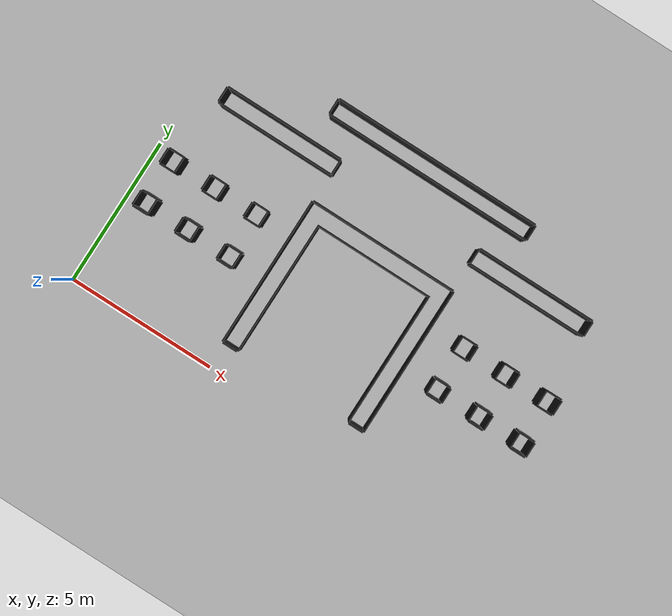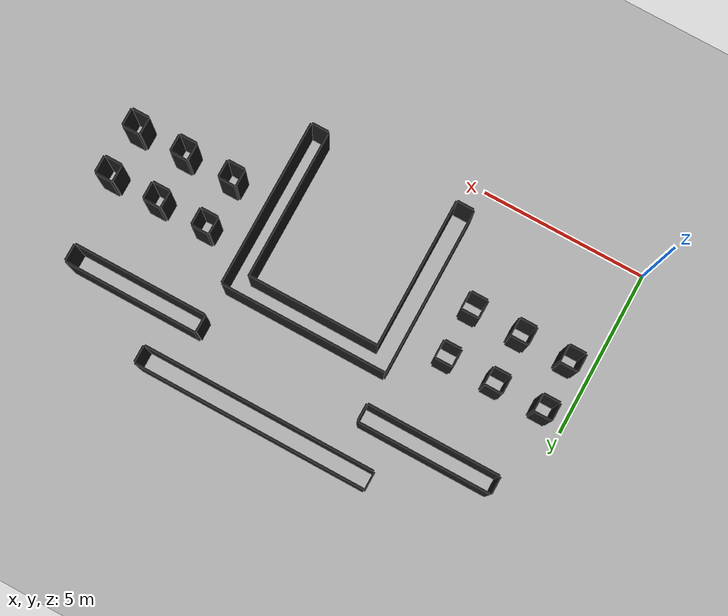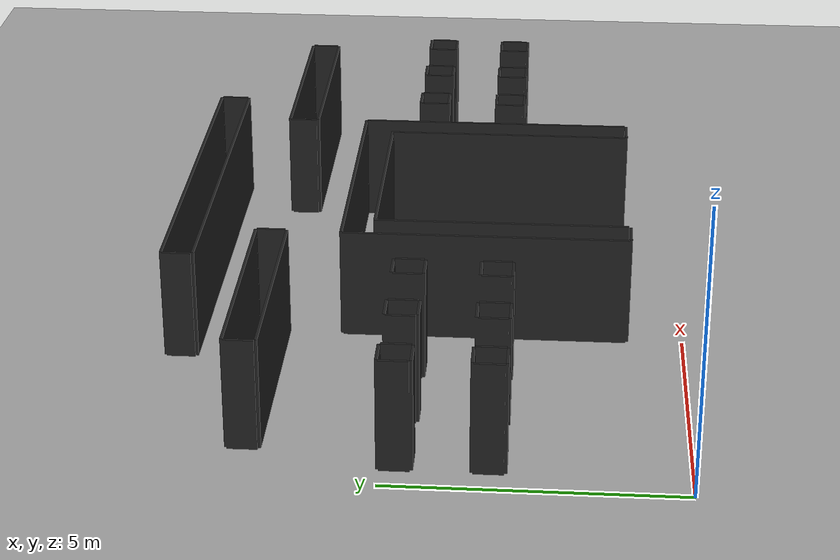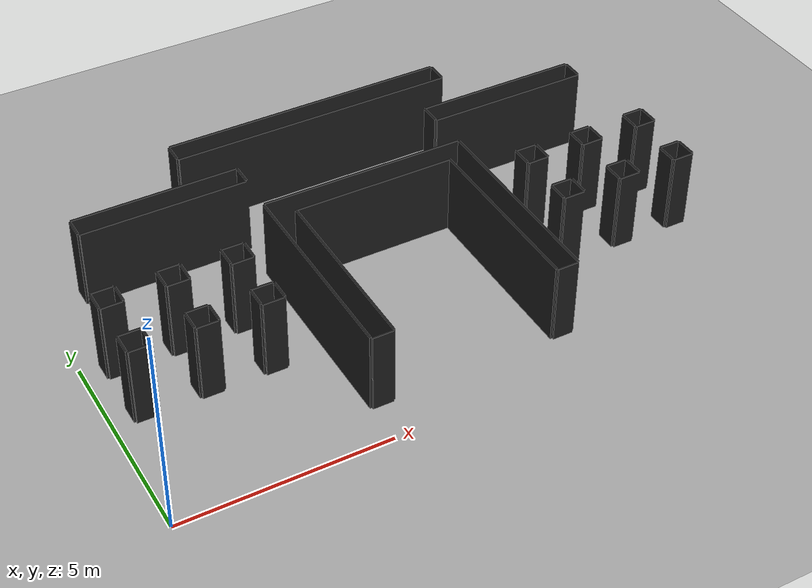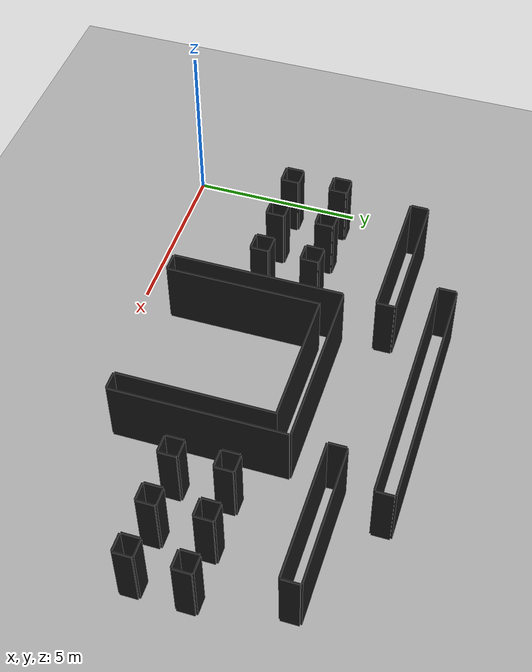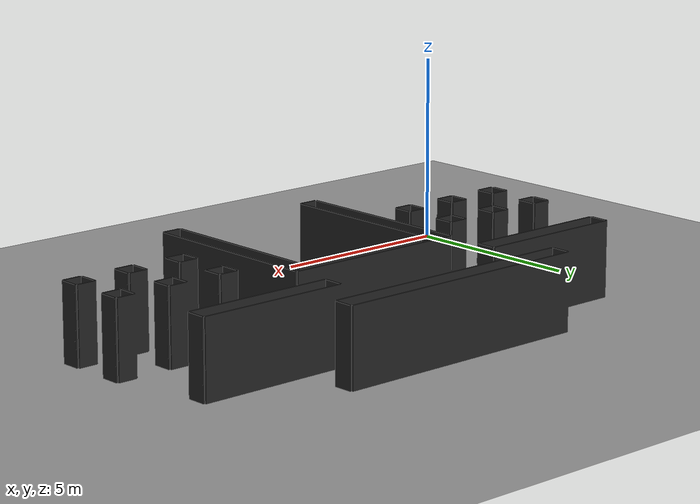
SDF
<?xml version="1.0" ?>
<sdf version="1.7">
  <world name="obstacles_world">

    <scene>
      <ambient>0.45 0.45 0.45 1.0</ambient>
      <background>0.78 0.82 0.86 1.0</background>
      <shadows>false</shadows>
    </scene>

    <light name="sun" type="directional">
      <pose>0 0 20 0 0 0</pose>
      <diffuse>0.85 0.85 0.85 1.0</diffuse>
      <specular>0.15 0.15 0.15 1.0</specular>
      <direction>-0.4 0.3 -1.0</direction>
    </light>

    <model name="ground_plane">
      <static>true</static>
      <link name="link">

        <collision name="collision">
          <geometry>
            <plane>
              <normal>0 0 1</normal>
              <size>100 100</size>
            </plane>
          </geometry>
        </collision>

        <visual name="visual">
          <geometry>
            <plane>
              <normal>0 0 1</normal>
              <size>100 100</size>
            </plane>
          </geometry>

          <material>
            <ambient>0.55 0.55 0.55 1.0</ambient>
            <diffuse>0.65 0.65 0.65 1.0</diffuse>
            <specular>0.02 0.02 0.02 1.0</specular>
          </material>
        </visual>

      </link>
    </model>

    <include>
      <uri>model://map_obstacles</uri>
      <pose>0 0 0 0 0 0</pose>
    </include>

  </world>
</sdf>

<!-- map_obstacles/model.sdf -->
<sdf version="1.7">
  <model name="map_obstacles">
    <static>true</static>

    <link name="link">

      <visual name="visual">
        <geometry>
          <mesh>
            <uri>model://map_obstacles/meshes/obstacles.stl</uri>
          </mesh>
        </geometry>

        <material>
          <ambient>0.05 0.05 0.05 1.0</ambient>
          <diffuse>0.12 0.12 0.12 1.0</diffuse>
          <specular>0.01 0.01 0.01 1.0</specular>
        </material>

        <cast_shadows>false</cast_shadows>
      </visual>

      <collision name="collision">
        <geometry>
          <mesh>
            <uri>model://map_obstacles/meshes/obstacles.stl</uri>
          </mesh>
        </geometry>
      </collision>

    </link>
  </model>
</sdf>
